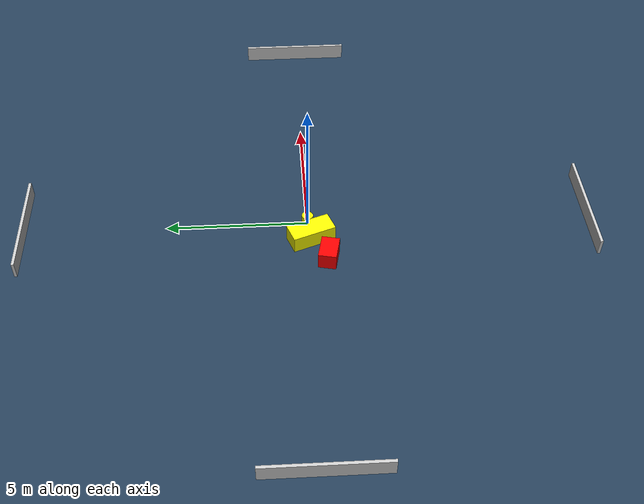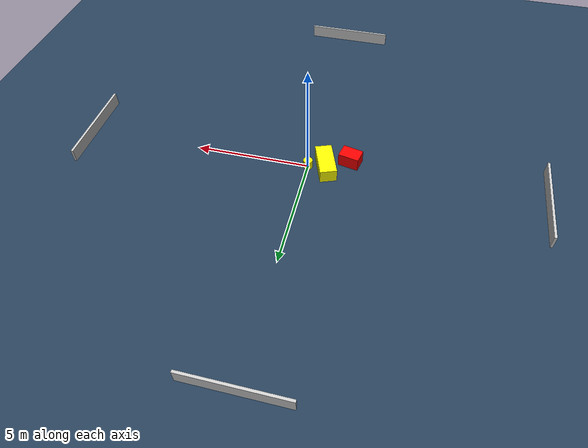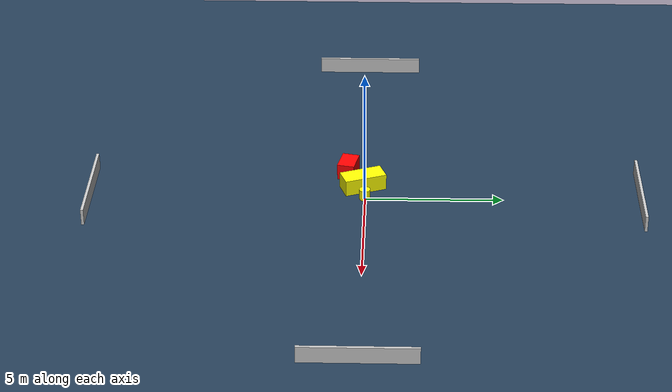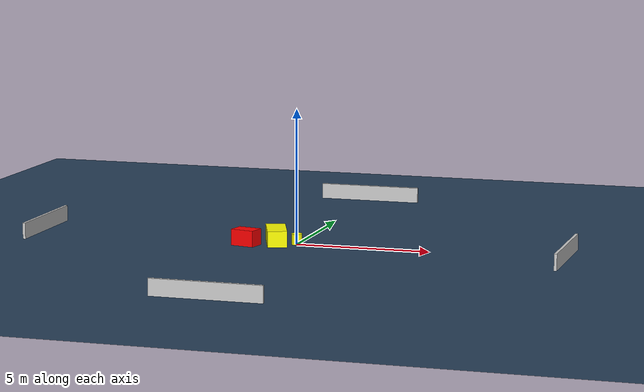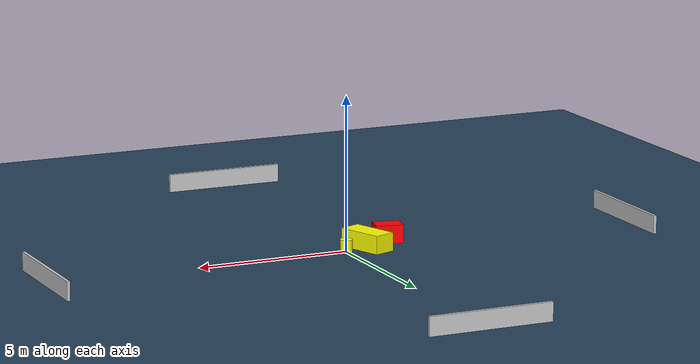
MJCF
<?xml version="1.0" ?>
<mujoco model="generated_environment">
  <option timestep="0.01" integrator="RK4" cone="elliptic"/>
  <default>
    <geom density="1"/>
  </default>
  <asset>
    <texture builtin="gradient" height="3072" name="skybox" rgb1="0.3 0.5 0.7" rgb2="0 0 0" type="skybox" width="512"/>
    <texture builtin="checker" height="300" name="groundplane" rgb1="0.2 0.3 0.4" rgb2="0.1 0.2 0.3" type="2d" width="300"/>
    <material name="groundplane" reflectance="0.2" texrepeat="5 5" texture="groundplane"/>
  </asset>
  <worldbody>
    <light dir="0 0 -1" directional="true" pos="0 0 1.5"/>
    <geom condim="3" friction="0.5 0.005 0.001" material="groundplane" name="floor" pos="0 0 0" size="0 0 0.05" type="plane"/>
    <body name="walls">
      <geom name="wall_1" condim="4" pos="-10.0 0.0 0.3" rgba="0.800000011920929 0.800000011920929 0.800000011920929 1.0" size="0.05 2.0 0.3" type="box"/>
      <geom name="wall_2" condim="4" pos="10.0 0.0 0.3" rgba="0.800000011920929 0.800000011920929 0.800000011920929 1.0" size="0.05 2.0 0.3" type="box"/>
      <geom name="wall_3" condim="4" pos="0.0 -10.0 0.3" rgba="0.800000011920929 0.800000011920929 0.800000011920929 1.0" size="2.0 0.05 0.3" type="box"/>
      <geom name="wall_4" condim="4" pos="0.0 10.0 0.3" rgba="0.800000011920929 0.800000011920929 0.800000011920929 1.0" size="2.0 0.05 0.3" type="box"/>
    </body>
    <body name="robot">
      <joint name="joint_x" type="slide" pos="0 0 0" axis="1 0 0"/>
      <joint name="joint_y" type="slide" pos="0 0 0" axis="0 1 0"/>
      <geom name="robot" type="cylinder" pos="0.0 0.0 0.2" size="0.2 0.2 0.0" mass="5.0" friction="1.0 0.005 0.0001" condim="4" rgba="1.0 1.0 0.0 1.0"/>
    </body>
    <body name="obstacle_1_movable">
      <geom name="obstacle_1_movable" condim="4" pos="-0.7641504372292336 -0.08405017998168082 0.3" euler="0 0 110.3462259033049" friction="0.0 0.005 0.001" rgba="1.0 1.0 0.0 1.0" size="0.7800251055183953 0.3610039912899661 0.3" type="box" mass="0.1"/>
      <joint type="free"/>
    </body>
    <body name="obstacle_2_static">
      <geom name="obstacle_2_static" condim="4" pos="-1.746802107671189 -0.6460027414811395 0.3" euler="0 0 167.84602219210186" friction="0.0 0.005 0.001" rgba="1.0 0.0 0.0 1.0" size="0.44795978388659036 0.3145966470453867 0.3" type="box"/>
    </body>
  </worldbody>
  <actuator>
    <motor name="actuator_x" joint="joint_x" gear="1" ctrlrange="-1 1"/>
    <motor name="actuator_y" joint="joint_y" gear="1" ctrlrange="-1 1"/>
  </actuator>
</mujoco>
